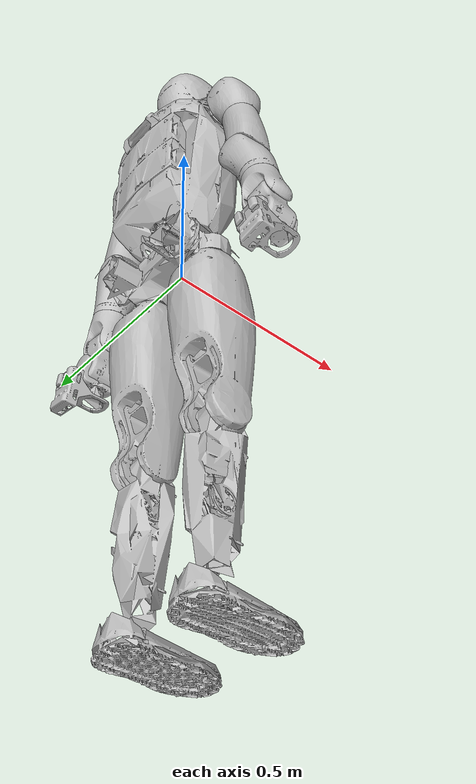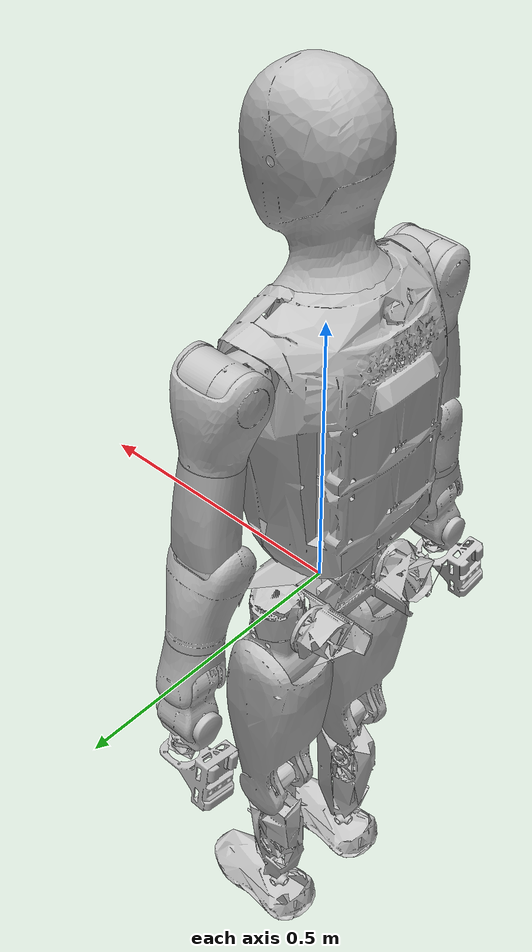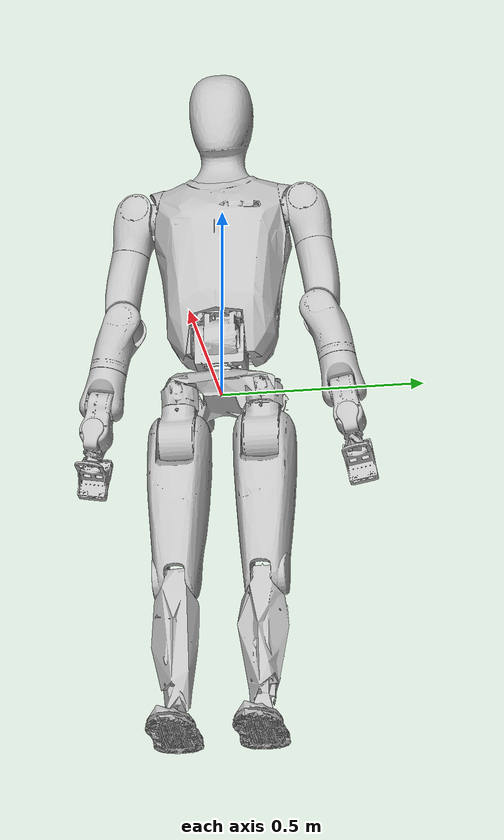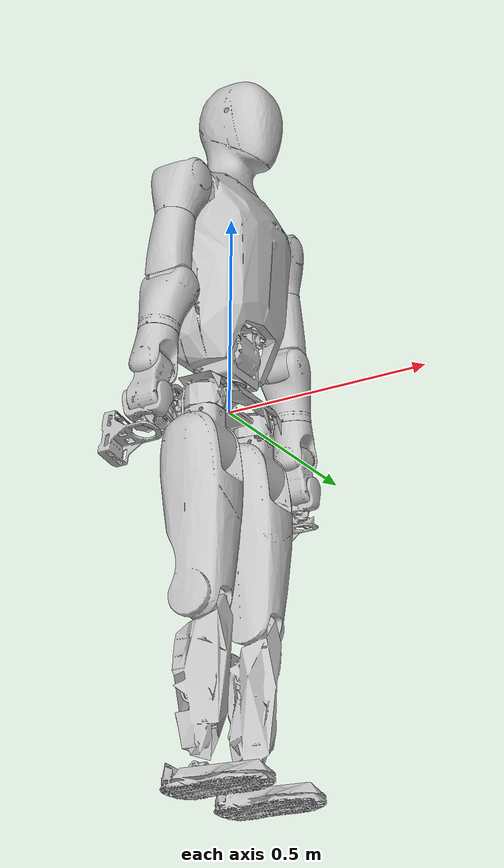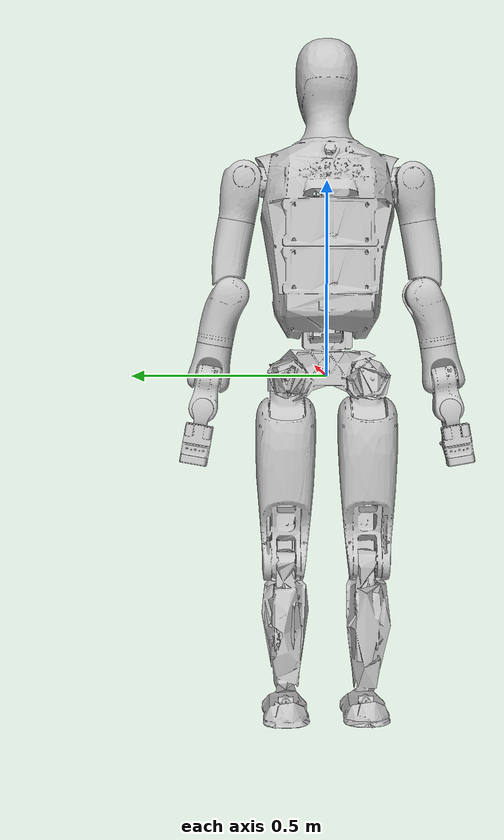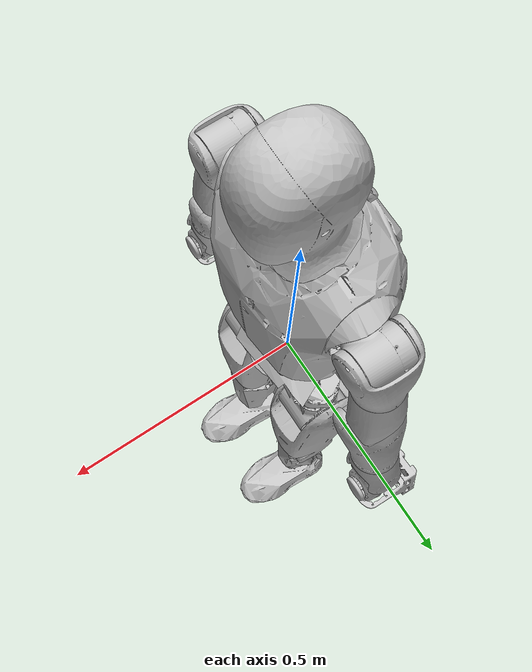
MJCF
<mujoco model="s2">
  <compiler angle="radian" meshdir="meshes/"/>

  <asset>
    <mesh name="base_link" content_type="model/stl" file="base_link.STL"/>
    <mesh name="waist_yaw_link" content_type="model/stl" file="waist_yaw_link.STL"/>
    <mesh name="waist_pitch_link" content_type="model/stl" file="waist_pitch_link.STL"/>
    <mesh name="head_yaw_link" content_type="model/stl" file="head_yaw_link.STL"/>
    <mesh name="head_pitch_link" content_type="model/stl" file="head_pitch_link.STL"/>
    <mesh name="L_shoulder_pitch_link" content_type="model/stl" file="L_shoulder_pitch_link.STL"/>
    <mesh name="L_shoulder_roll_link" content_type="model/stl" file="L_shoulder_roll_link.STL"/>
    <mesh name="L_shoulder_yaw_link" content_type="model/stl" file="L_shoulder_yaw_link.STL"/>
    <mesh name="L_elbow_roll_link" content_type="model/stl" file="L_elbow_roll_link.STL"/>
    <mesh name="L_elbow_yaw_link" content_type="model/stl" file="L_elbow_yaw_link.STL"/>
    <mesh name="L_wrist_pitch_link" content_type="model/stl" file="L_wrist_pitch_link.STL"/>
    <mesh name="L_wrist_roll_link" content_type="model/stl" file="L_wrist_roll_link.STL"/>
    <mesh name="L_sixforce_link" content_type="model/stl" file="L_sixforce_link.STL"/>
    <mesh name="L_hand_link" content_type="model/stl" file="L_hand_link.STL"/>
    <mesh name="R_shoulder_pitch_link" content_type="model/stl" file="R_shoulder_pitch_link.STL"/>
    <mesh name="R_shoulder_roll_link" content_type="model/stl" file="R_shoulder_roll_link.STL"/>
    <mesh name="R_shoulder_yaw_link" content_type="model/stl" file="R_shoulder_yaw_link.STL"/>
    <mesh name="R_elbow_roll_link" content_type="model/stl" file="R_elbow_roll_link.STL"/>
    <mesh name="R_elbow_yaw_link" content_type="model/stl" file="R_elbow_yaw_link.STL"/>
    <mesh name="R_wrist_pitch_link" content_type="model/stl" file="R_wrist_pitch_link.STL"/>
    <mesh name="R_wrist_roll_link" content_type="model/stl" file="R_wrist_roll_link.STL"/>
    <mesh name="R_sixforce_link" content_type="model/stl" file="R_sixforce_link.STL"/>
    <mesh name="R_hand_link" content_type="model/stl" file="R_hand_link.STL"/>
    <mesh name="R_hip_roll_link" content_type="model/stl" file="R_hip_roll_link.STL"/>
    <mesh name="R_hip_yaw_link" content_type="model/stl" file="R_hip_yaw_link.STL"/>
    <mesh name="R_hip_pitch_link" content_type="model/stl" file="R_hip_pitch_link.STL"/>
    <mesh name="R_knee_pitch_link" content_type="model/stl" file="R_knee_pitch_link.STL"/>
    <mesh name="R_ankle_pitch_link" content_type="model/stl" file="R_ankle_pitch_link.STL"/>
    <mesh name="R_ankle_roll_link" content_type="model/stl" file="R_ankle_roll_link.STL"/>
    <mesh name="L_hip_roll_link" content_type="model/stl" file="L_hip_roll_link.STL"/>
    <mesh name="L_hip_yaw_link" content_type="model/stl" file="L_hip_yaw_link.STL"/>
    <mesh name="L_hip_pitch_link" content_type="model/stl" file="L_hip_pitch_link.STL"/>
    <mesh name="L_knee_pitch_link" content_type="model/stl" file="L_knee_pitch_link.STL"/>
    <mesh name="L_ankle_pitch_link" content_type="model/stl" file="L_ankle_pitch_link.STL"/>
    <mesh name="L_ankle_roll_link" content_type="model/stl" file="L_ankle_roll_link.STL"/>
  </asset>

  <worldbody>
    <body name="base_link">
      <inertial pos="-0.0664704 -0.00011731 0.0104092" quat="0.437217 0.437838 -0.55671 0.554268" mass="6.39779" diaginertia="0.0783755 0.0587548 0.0298739"/>
      <joint name="root_joint" type="free"/>
      <geom type="mesh" contype="0" conaffinity="0" group="1" density="0" rgba="0.75294 0.75294 0.75294 1" mesh="base_link"/>
      <geom name="pelvis_col" size="0.1" pos="-0.05 0 0" quat="0.707388 0 0.706825 0" group="3" rgba="1 1 1 1"/>
      <site name="imu_link" pos="0 0 0" size="0.01"/>
      <body name="waist_yaw_link" pos="0 0 0.0685">
        <inertial pos="-0.00019894 0.00967667 0.0473922" quat="0.632194 0.774677 0.00875957 -0.0113649" mass="0.51684" diaginertia="0.00171963 0.00140095 0.00107035"/>
        <joint name="waist_yaw_joint" pos="0 0 0" axis="0 0 1" range="-2.8274 2.8274" actuatorfrcrange="-85 85"/>
        <geom type="mesh" contype="0" conaffinity="0" group="1" density="0" rgba="0.75294 0.75294 0.75294 1" mesh="waist_yaw_link"/>
        <body name="waist_pitch_link" pos="0 0 0.0745">
          <inertial pos="-0.0158807 0.00219071 0.201105" quat="0.999547 0.0122624 -0.0193181 -0.0195308" mass="23.7882" diaginertia="0.494898 0.438748 0.197129"/>
          <joint name="waist_pitch_joint" pos="0 0 0" axis="0 1 0" range="-0.6108 1.5707" actuatorfrcrange="-265 265"/>
          <geom type="mesh" contype="0" conaffinity="0" group="1" density="0" rgba="0.75294 0.75294 0.75294 1" mesh="waist_pitch_link"/>
          <geom name="torso_col" size="0.13" pos="-0.02 0 0.15" quat="0.707388 0 0.706825 0" group="3" rgba="1 1 1 1"/>
          <body name="head_yaw_link" pos="0.0031354 0 0.48409" quat="0.999995 0 0.00323834 0">
            <inertial pos="-0.0014622 0.000179 -0.00258882" quat="0.985192 -0.000476684 -0.16823 0.0331045" mass="0.581097" diaginertia="0.00159635 0.00153983 0.000812818"/>
            <joint name="head_yaw_joint" pos="0 0 0" axis="0 0 1" range="-1.658 1.658" actuatorfrcrange="-4.5 4.5"/>
            <geom type="mesh" contype="0" conaffinity="0" group="1" density="0" rgba="0.75294 0.75294 0.75294 1" mesh="head_yaw_link"/>
            <body name="head_pitch_link" pos="0 0 0.025">
              <inertial pos="0.0405655 0.00026037 0.102497" quat="0.710834 -0.197042 -0.233528 0.633525" mass="1.06901" diaginertia="0.00518907 0.0049714 0.00426869"/>
              <joint name="head_pitch_joint" pos="0 0 0" axis="0 1 0" range="-0.5236 0.7854" actuatorfrcrange="-4.5 4.5"/>
              <geom type="mesh" contype="0" conaffinity="0" group="1" density="0" rgba="0.75294 0.75294 0.75294 1" mesh="head_pitch_link"/>
              <geom name="head_col" size="0.07" pos="0 0 0.1" group="3" rgba="1 1 1 1"/>
            </body>
          </body>
          <body name="L_shoulder_pitch_link" pos="-0.00234527 0.150912 0.348138" quat="0.996194 0.0871543 0.000662152 -0.000506551">
            <inertial pos="0.0066 0.0540853 0.00148738" quat="0.567137 0.491693 -0.504539 0.426656" mass="0.961194" diaginertia="0.00115181 0.00111294 0.000872155"/>
            <joint name="L_shoulder_pitch_joint" pos="0 0 0" axis="0 1 0" range="-2.8623 2.8623" actuatorfrcrange="-80 80"/>
            <geom type="mesh" contype="0" conaffinity="0" group="1" density="0" rgba="0.75294 0.75294 0.75294 1" mesh="L_shoulder_pitch_link"/>
            <body name="L_shoulder_roll_link" pos="0 0.063 0">
              <inertial pos="0.00628631 0.00072174 -0.0350663" quat="0.709933 0.136517 0.150536 0.674312" mass="0.53957" diaginertia="0.00189265 0.00147543 0.00118381"/>
              <joint name="L_shoulder_roll_joint" pos="0 0 0" axis="1 0 0" range="-0.1222 1.885" actuatorfrcrange="-80 80"/>
              <geom type="mesh" contype="0" conaffinity="0" group="1" density="0" rgba="0.75294 0.75294 0.75294 1" mesh="L_shoulder_roll_link"/>
              <body name="L_shoulder_yaw_link" pos="0.00100044 -0.000977999 -0.081729" quat="0.999997 0.00242026 -2.38222e-05 0.000458264">
                <inertial pos="0.00269924 -0.00904 -0.12859" quat="0.73332 -0.0522509 0.0273209 0.677322" mass="1.99576" diaginertia="0.0158243 0.0157704 0.00191099"/>
                <joint name="L_shoulder_yaw_joint" pos="0 0 0" axis="0 0 1" range="-2.9322 2.9322" actuatorfrcrange="-45 45"/>
                <geom type="mesh" contype="0" conaffinity="0" group="1" density="0" rgba="0.75294 0.75294 0.75294 1" mesh="L_shoulder_yaw_link"/>
                <body name="L_elbow_roll_link" pos="-0.000205938 -0.0199917 -0.213">
                  <inertial pos="0.00094352 0.00759335 -0.056965" quat="0.702006 0.101401 -0.0763193 0.700771" mass="0.68886" diaginertia="0.00267597 0.00225968 0.00135413"/>
                  <joint name="L_elbow_roll_joint" pos="0 0 0" axis="1 0 0" range="-2.6529 0.0349" actuatorfrcrange="-45 45"/>
                  <geom type="mesh" contype="0" conaffinity="0" group="1" density="0" rgba="0.75294 0.75294 0.75294 1" mesh="L_elbow_roll_link"/>
                  <body name="L_elbow_yaw_link" pos="0.000205938 0.0199917 -0.118181" quat="1 0 0 -0.000470778">
                    <inertial pos="0.00022731 0.00098935 -0.0314613" quat="0.99894 0.0456686 -0.00022896 0.00579459" mass="0.857887" diaginertia="0.00163127 0.00143774 0.000865475"/>
                    <joint name="L_elbow_yaw_joint" pos="0 0 0" axis="0 0 1" range="-2.9322 2.9322" actuatorfrcrange="-20 20"/>
                    <geom type="mesh" contype="0" conaffinity="0" group="1" density="0" rgba="0.75294 0.75294 0.75294 1" mesh="L_elbow_yaw_link"/>
                    <body name="L_wrist_pitch_link" pos="0 0 -0.103819" quat="0.999986 1.21505e-05 0.00259645 -0.00467959">
                      <inertial pos="0.0049237 0.0048371 -0.038455" quat="0.809769 -0.0846959 -0.0123625 0.580472" mass="1.2811" diaginertia="0.0027092 0.00270113 0.000838537"/>
                      <joint name="L_wrist_pitch_joint" pos="0 0 0" axis="0 1 0" range="-1.658 1.658" actuatorfrcrange="-20 20"/>
                      <geom type="mesh" contype="0" conaffinity="0" group="1" density="0" rgba="0.75294 0.75294 0.75294 1" mesh="L_wrist_pitch_link"/>
                      <body name="L_wrist_roll_link" pos="0.000394661 0 -0.075999" quat="0.999997 0 -0.00259648 0">
                        <inertial pos="0.000742 0.00015724 -0.017348" quat="0.514678 0.484669 0.477742 0.521503" mass="0.15344" diaginertia="0.000275071 0.000216479 0.00011161"/>
                        <joint name="L_wrist_roll_joint" pos="0 0 0" axis="1 0 0" range="-2.0245 2.0245" actuatorfrcrange="-20 20"/>
                        <geom type="mesh" contype="0" conaffinity="0" group="1" density="0" rgba="0.75294 0.75294 0.75294 1" mesh="L_wrist_roll_link"/>
                        <body name="L_sixforce_link" pos="-0.0044948 -0.0019462 -0.084379" quat="0.999994 -0.00244449 0.00257359 6.29115e-06">
                          <inertial pos="-0.00011076 3.22e-06 0.0113383" quat="0 0.682398 0 0.730981" mass="0.24541" diaginertia="0.000106147 9.35e-05 7.50534e-05"/>
                          <geom type="mesh" contype="0" conaffinity="0" group="1" density="0" rgba="0.75294 0.75294 0.75294 1" mesh="L_sixforce_link"/>
                          <body name="L_hand_link" pos="-0.075478 -0.00070644 -0.0055" quat="0.999989 0 0 0.00467958">
                            <inertial pos="0.0153405 2e-06 -0.00192629" quat="0.541404 0.454731 0.4548 0.541534" mass="0.280148" diaginertia="0.00042842 0.000384473 0.000326057"/>
                            <geom type="mesh" contype="0" conaffinity="0" group="1" density="0" rgba="0.75294 0.75294 0.75294 1" mesh="L_hand_link"/>
                          </body>
                        </body>
                      </body>
                    </body>
                  </body>
                </body>
              </body>
            </body>
          </body>
          <body name="R_shoulder_pitch_link" pos="-0.00234527 -0.150912 0.348138" quat="0.996192 -0.087155 0.00241552 0.000353154">
            <inertial pos="0.00238 -0.0569176 -0.00139381" quat="0.41876 0.499281 -0.509351 0.562068" mass="0.962453" diaginertia="0.00115412 0.00111341 0.000874557"/>
            <joint name="R_shoulder_pitch_joint" pos="0 0 0" axis="0 1 0" range="-2.8623 2.8623" actuatorfrcrange="-80 80"/>
            <geom type="mesh" contype="0" conaffinity="0" group="1" density="0" rgba="0.75294 0.75294 0.75294 1" mesh="R_shoulder_pitch_link"/>
            <body name="R_shoulder_roll_link" pos="0 -0.063 0" quat="1 0 0.000813625 0">
              <inertial pos="0.00206499 -0.00319243 -0.0374087" quat="0.680023 0.159386 0.136337 0.70255" mass="0.5434" diaginertia="0.00191303 0.00148496 0.00119677"/>
              <joint name="R_shoulder_roll_joint" pos="0 0 0" axis="1 0 0" range="-1.885 0.1222" actuatorfrcrange="-80 80"/>
              <geom type="mesh" contype="0" conaffinity="0" group="1" density="0" rgba="0.75294 0.75294 0.75294 1" mesh="R_shoulder_roll_link"/>
              <body name="R_shoulder_yaw_link" pos="-0.00318012 -0.000942066 -0.0843157" quat="0.999983 0.00243242 -0.000826454 -0.00528739">
                <inertial pos="0.0028177 0.0090919 -0.12862" quat="0.720956 0.0304093 -0.0511458 0.690421" mass="1.9947" diaginertia="0.0158113 0.0157569 0.00191087"/>
                <joint name="R_shoulder_yaw_joint" pos="0 0 0" axis="0 0 1" range="-2.9322 2.9322" actuatorfrcrange="-45 45"/>
                <geom type="mesh" contype="0" conaffinity="0" group="1" density="0" rgba="0.75294 0.75294 0.75294 1" mesh="R_shoulder_yaw_link"/>
                <body name="R_elbow_roll_link" pos="0.00261403 0.0199354 -0.211788" quat="0.999987 0 0 0.00514158">
                  <inertial pos="-0.00186194 -0.00822 -0.0588606" quat="0.708148 -0.0698101 0.0967194 0.695916" mass="0.686447" diaginertia="0.0026862 0.00226043 0.00136516"/>
                  <joint name="R_elbow_roll_joint" pos="0 0 0" axis="1 0 0" range="-0.0349 2.6529" actuatorfrcrange="-45 45"/>
                  <geom type="mesh" contype="0" conaffinity="0" group="1" density="0" rgba="0.75294 0.75294 0.75294 1" mesh="R_elbow_roll_link"/>
                  <body name="R_elbow_yaw_link" pos="-0.00281889 -0.0199075 -0.119392" quat="1 -1.20685e-07 0.0008393 0.000143792">
                    <inertial pos="0.00028355 0.0009837 -0.0314705" quat="0.998935 0.045822 -0.00111835 0.00519331" mass="0.858205" diaginertia="0.00163155 0.00143475 0.000865565"/>
                    <joint name="R_elbow_yaw_joint" pos="0 0 0" axis="0 0 1" range="-2.9322 2.9322" actuatorfrcrange="-20 20"/>
                    <geom type="mesh" contype="0" conaffinity="0" group="1" density="0" rgba="0.75294 0.75294 0.75294 1" mesh="R_elbow_yaw_link"/>
                    <body name="R_wrist_pitch_link" pos="0.000174274 0 -0.103819" quat="0.999986 4.43601e-06 -0.000839289 -0.00528537">
                      <inertial pos="0.0049237 0.0048371 -0.038455" quat="0.811039 -0.0846925 -0.012581 0.578692" mass="1.2811" diaginertia="0.00270922 0.00270115 0.000838501"/>
                      <joint name="R_wrist_pitch_joint" pos="0 0 0" axis="0 1 0" range="-1.658 1.658" actuatorfrcrange="-20 20"/>
                      <geom type="mesh" contype="0" conaffinity="0" group="1" density="0" rgba="0.75294 0.75294 0.75294 1" mesh="R_wrist_pitch_link"/>
                      <body name="R_wrist_roll_link" pos="0 0 -0.076">
                        <inertial pos="0.000749 -4.63e-06 -0.0170562" quat="0.517839 0.481596 0.48152 0.517732" mass="0.152102" diaginertia="0.00027356 0.000216018 0.000109672"/>
                        <joint name="R_wrist_roll_joint" pos="0 0 0" axis="1 0 0" range="-2.0245 2.0245" actuatorfrcrange="-20 20"/>
                        <geom type="mesh" contype="0" conaffinity="0" group="1" density="0" rgba="0.75294 0.75294 0.75294 1" mesh="R_wrist_roll_link"/>
                        <body name="R_sixforce_link" pos="0.0022054 -0.0019134 -0.081806" quat="0.999997 -0.00243675 0 0">
                          <inertial pos="-0.00011076 3.22e-06 0.011338" quat="0 0.682398 0 0.730981" mass="0.24541" diaginertia="0.000106147 9.35e-05 7.50534e-05"/>
                          <geom type="mesh" contype="0" conaffinity="0" group="1" density="0" rgba="0.75294 0.75294 0.75294 1" mesh="R_sixforce_link"/>
                          <body name="R_hand_link" pos="-0.082205 -0.00086958 -0.0053662" quat="0.999996 0.00243673 0.00174476 4.25145e-06">
                            <inertial pos="0.0153405 2e-06 -0.00192629" quat="0.541404 0.454731 0.4548 0.541534" mass="0.280148" diaginertia="0.00042842 0.000384473 0.000326057"/>
                            <geom type="mesh" contype="0" conaffinity="0" group="1" density="0" rgba="0.75294 0.75294 0.75294 1" mesh="R_hand_link"/>
                          </body>
                        </body>
                      </body>
                    </body>
                  </body>
                </body>
              </body>
            </body>
          </body>
        </body>
      </body>
      <body name="R_hip_roll_link" pos="0 -0.105 0">
        <inertial pos="-0.00762458 0.00068462 -0.0092362" quat="-0.00928601 0.752341 -0.0456471 0.657125" mass="1.32106" diaginertia="0.00188032 0.00173618 0.00114877"/>
        <joint name="R_hip_roll_joint" pos="0 0 0" axis="1 0 0" range="-0.7853 0.4363" actuatorfrcrange="-225 225"/>
        <geom type="mesh" contype="0" conaffinity="0" group="1" density="0" rgba="0.75294 0.75294 0.75294 1" mesh="R_hip_roll_link"/>
        <body name="R_hip_yaw_link" pos="0 0 -0.0365">
          <inertial pos="-0.00045556 0.00011978 -0.0716945" quat="0.718403 0.0111259 0.00795327 0.695492" mass="0.984595" diaginertia="0.00289477 0.00268022 0.00214744"/>
          <joint name="R_hip_yaw_joint" pos="0 0 0" axis="0 0 1" range="-0.7853 1.0471" actuatorfrcrange="-65 65"/>
          <geom type="mesh" contype="0" conaffinity="0" group="1" density="0" rgba="0.75294 0.75294 0.75294 1" mesh="R_hip_yaw_link"/>
          <body name="R_hip_pitch_link" pos="0 0 -0.0855">
            <inertial pos="0.00152124 -0.00278426 -0.155618" quat="0.998715 -0.0182813 -0.0281292 0.037978" mass="4.15974" diaginertia="0.0430855 0.0428404 0.00986724"/>
            <joint name="R_hip_pitch_joint" pos="0 0 0" axis="0 1 0" range="-1.9198 0.349" actuatorfrcrange="-225 225"/>
            <geom type="mesh" contype="0" conaffinity="0" group="1" density="0" rgba="0.75294 0.75294 0.75294 1" mesh="R_hip_pitch_link"/>
            <geom name="thigh_r_col" size="0.05 0.07" pos="0 0 -0.18" type="capsule" group="3" rgba="1 1 1 1"/>
            <body name="R_knee_pitch_link" pos="0 0 -0.36">
              <inertial pos="-0.00101894 -0.00103884 -0.159533" quat="0.732971 0.0131529 0.00862484 0.680078" mass="3.77343" diaginertia="0.0346455 0.0338565 0.00471638"/>
              <joint name="R_knee_pitch_joint" pos="0 0 0" axis="0 1 0" range="-0.0872 2.2689" actuatorfrcrange="-225 225"/>
              <geom type="mesh" contype="0" conaffinity="0" group="1" density="0" rgba="0.75294 0.75294 0.75294 1" mesh="R_knee_pitch_link"/>
              <geom name="shank_r_col" size="0.05 0.09" pos="0 0 -0.18" type="capsule" group="3" rgba="1 1 1 1"/>
              <body name="R_ankle_pitch_link" pos="0 0 -0.37">
                <inertial pos="0 0 0" quat="0.5 0.5 -0.5 0.5" mass="0.0659137" diaginertia="1.84e-05 1.09e-05 1.09e-05"/>
                <joint name="R_ankle_pitch_joint" pos="0 0 0" axis="0 1 0" range="-1.0471 0.5235" actuatorfrcrange="-65 65"/>
                <geom type="mesh" contype="0" conaffinity="0" group="1" density="0" rgba="0.75294 0.75294 0.75294 1" mesh="R_ankle_pitch_link"/>
                <body name="R_ankle_roll_link">
                  <inertial pos="0.0339118 -3.774e-05 -0.0293086" quat="0.000314795 0.731193 0.000903626 0.68217" mass="1.06156" diaginertia="0.00623488 0.00543045 0.0012293"/>
                  <joint name="R_ankle_roll_joint" pos="0 0 0" axis="1 0 0" range="-0.5235 0.5235" actuatorfrcrange="-65 65"/>
                  <geom type="mesh" contype="0" conaffinity="0" group="1" density="0" rgba="0.75294 0.75294 0.75294 1" mesh="R_ankle_roll_link"/>
                  <geom name="foot_r_sole_col" size="0.1 0.045 0.01" pos="0.02 0 -0.04" type="box" group="3" rgba="1 1 1 1"/>
                  <geom name="foot_r_toe_col" size="0.028 0.045 0.01" pos="0.142 0 -0.028" quat="0.974371 0 -0.224948 0" type="box" group="3" rgba="1 1 1 1"/>
                </body>
              </body>
            </body>
          </body>
        </body>
      </body>
      <body name="L_hip_roll_link" pos="0 0.105 0">
        <inertial pos="-0.00763564 0.0001896 -0.00925171" quat="-0.0227746 0.753189 -0.0215934 0.657055" mass="1.32141" diaginertia="0.0018813 0.00173734 0.00115184"/>
        <joint name="L_hip_roll_joint" pos="0 0 0" axis="1 0 0" range="-0.4363 0.7853" actuatorfrcrange="-225 225"/>
        <geom type="mesh" contype="0" conaffinity="0" group="1" density="0" rgba="0.75294 0.75294 0.75294 1" mesh="L_hip_roll_link"/>
        <body name="L_hip_yaw_link" pos="0 0 -0.0365">
          <inertial pos="0.00045565 -0.00106331 -0.0716919" quat="0.71859 -0.0107496 -0.00831067 0.695301" mass="0.984407" diaginertia="0.00289472 0.00268249 0.00214976"/>
          <joint name="L_hip_yaw_joint" pos="0 0 0" axis="0 0 1" range="-1.0471 0.7853" actuatorfrcrange="-65 65"/>
          <geom type="mesh" contype="0" conaffinity="0" group="1" density="0" rgba="0.75294 0.75294 0.75294 1" mesh="L_hip_yaw_link"/>
          <body name="L_hip_pitch_link" pos="0 0 -0.0855">
            <inertial pos="0.00184451 0.00269356 -0.155901" quat="0.999467 0.0171505 -0.0275068 -0.00379519" mass="4.15483" diaginertia="0.0431349 0.0429222 0.00986046"/>
            <joint name="L_hip_pitch_joint" pos="0 0 0" axis="0 1 0" range="-1.9198 0.349" actuatorfrcrange="-225 225"/>
            <geom type="mesh" contype="0" conaffinity="0" group="1" density="0" rgba="0.75294 0.75294 0.75294 1" mesh="L_hip_pitch_link"/>
            <geom name="thigh_l_col" size="0.05 0.07" pos="0 0 -0.18" type="capsule" group="3" rgba="1 1 1 1"/>
            <body name="L_knee_pitch_link" pos="0 0 -0.36">
              <inertial pos="-0.0009343 0.0010282 -0.159585" quat="0.677895 0.00940013 0.0134098 0.734977" mass="3.77348" diaginertia="0.0344874 0.0337164 0.00475377"/>
              <joint name="L_knee_pitch_joint" pos="0 0 0" axis="0 1 0" range="-0.0872 2.2689" actuatorfrcrange="-225 225"/>
              <geom type="mesh" contype="0" conaffinity="0" group="1" density="0" rgba="0.75294 0.75294 0.75294 1" mesh="L_knee_pitch_link"/>
              <geom name="shank_l_col" size="0.05 0.09" pos="0 0 -0.18" type="capsule" group="3" rgba="1 1 1 1"/>
              <body name="L_ankle_pitch_link" pos="0 0 -0.37">
                <inertial pos="0 0 0" quat="0.5 0.5 -0.5 0.5" mass="0.065914" diaginertia="1.84e-05 1.09e-05 1.09e-05"/>
                <joint name="L_ankle_pitch_joint" pos="0 0 0" axis="0 1 0" range="-1.0471 0.5235" actuatorfrcrange="-65 65"/>
                <geom type="mesh" contype="0" conaffinity="0" group="1" density="0" rgba="0.75294 0.75294 0.75294 1" mesh="L_ankle_pitch_link"/>
                <body name="L_ankle_roll_link">
                  <inertial pos="0.034412 -3.77e-05 -0.029309" quat="0.000315361 0.731182 0.000903816 0.682182" mass="1.0616" diaginertia="0.00623402 0.00543 0.00122598"/>
                  <joint name="L_ankle_roll_joint" pos="0 0 0" axis="1 0 0" range="-0.5235 0.5235" actuatorfrcrange="-65 65"/>
                  <geom type="mesh" contype="0" conaffinity="0" group="1" density="0" rgba="0.75294 0.75294 0.75294 1" mesh="L_ankle_roll_link"/>
                  <geom name="foot_l_sole_col" size="0.1 0.045 0.01" pos="0.02 0 -0.04" type="box" group="3" rgba="1 1 1 1"/>
                  <geom name="foot_l_toe_col" size="0.028 0.045 0.01" pos="0.142 0 -0.028" quat="0.974371 0 -0.224948 0" type="box" group="3" rgba="1 1 1 1"/>
                </body>
              </body>
            </body>
          </body>
        </body>
      </body>
    </body>
  </worldbody>
</mujoco>
